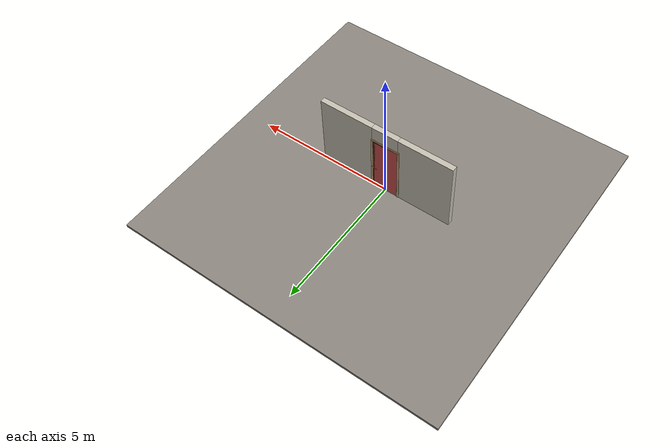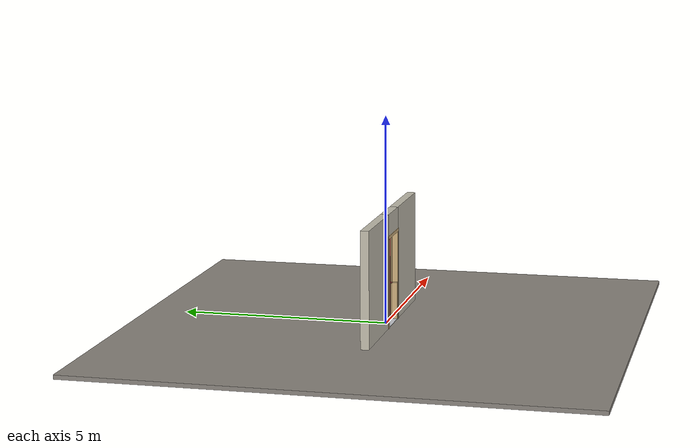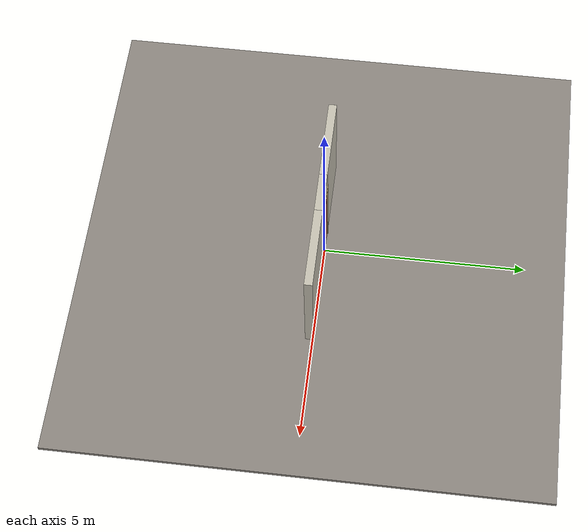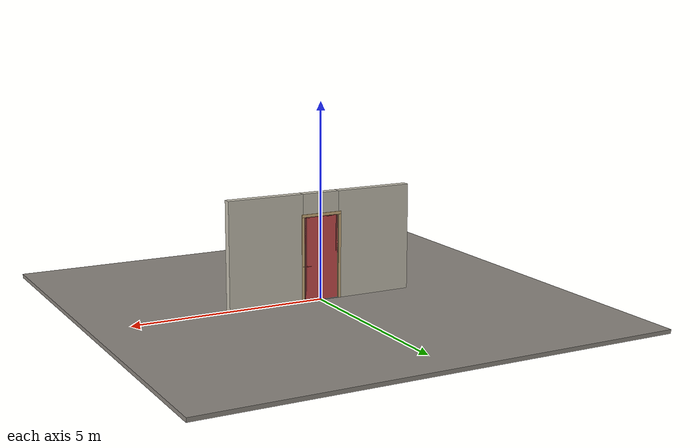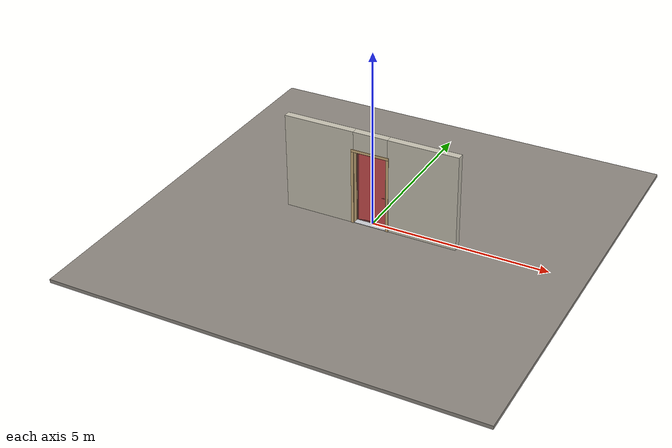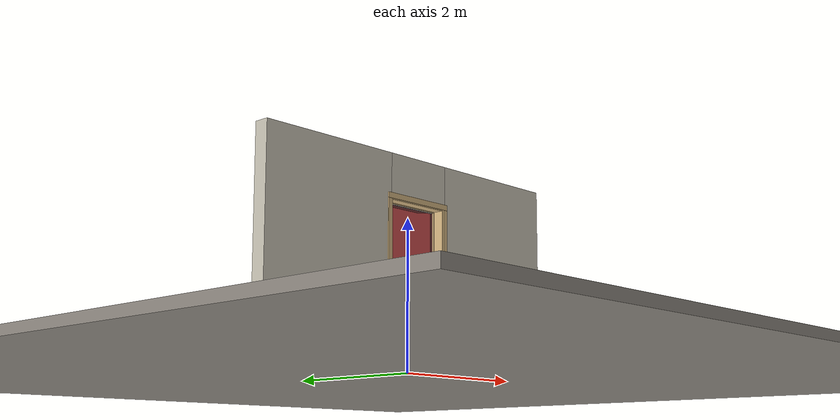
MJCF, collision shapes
<?xml version="1.0" ?>
<mujoco model="db0886_swing_single_full">
  <compiler angle="radian" meshdir="../../hardware" texturedir="../../textures" autolimits="true" inertiafromgeom="false"/>
  <option timestep="0.002" integrator="implicitfast" cone="elliptic" impratio="10" noslip_iterations="3">
    <flag multiccd="enable"/>
  </option>
  <size memory="16M"/>
  <default>
    <geom condim="4" solref="0.005 1" solimp="0.95 0.99 0.001"/>
    <joint solreflimit="0.005 1" solimplimit="0.95 0.99 0.001"/>
    <tendon solreflimit="0.005 1"/>
    <equality solref="0.002 1"/>
  </default>
  <visual>
    <headlight ambient="0.4 0.4 0.4" diffuse="0.7 0.7 0.7" specular="0.2 0.2 0.2"/>
    <quality shadowsize="4096"/>
    <map znear="0.01" zfar="60"/>
  </visual>
  <asset>
    <mesh name="hinge_11b97d6068" file="hinge_11b97d6068.obj"/>
    <mesh name="hinge_jamb_29995db8a9" file="hinge_jamb_29995db8a9.obj"/>
    <mesh name="lever_748f08efca" file="lever_748f08efca.obj"/>
    <material name="mat_floor" rgba="0.55 0.53 0.5 1" specular="0.2" shininess="0.15" reflectance="0"/>
    <material name="mat_wall" rgba="0.78 0.76 0.7 1" specular="0.2" shininess="0.1" reflectance="0"/>
    <material name="mat_leaf" rgba="0.2 0.2 0.2 0.5" specular="0.2" shininess="0.2" reflectance="0.1"/>
    <material name="mat_mesh_infill" rgba="0.6 0.62 0.64 0.55" specular="0.68" shininess="0.3" reflectance="0.1"/>
    <material name="mat_hinge" rgba="0.65 0.66 0.68 1" specular="0.74" shininess="0.5" reflectance="0.36"/>
    <material name="mat_op_chrome" rgba="0.9 0.9 0.92 1" specular="0.8" shininess="0.9" reflectance="0.4"/>
    <material name="mat_trim" rgba="0.85 0.66 0.3 1" specular="0.8" shininess="0.75" reflectance="0.4"/>
    <material name="mat_bolt" rgba="0.85 0.66 0.3 1" specular="0.8" shininess="0.75" reflectance="0.4"/>
    <material name="mat_frame" rgba="0.82 0.7 0.5 1" specular="0.2" shininess="0.45" reflectance="0"/>
    <material name="mat_seal" rgba="0.1 0.1 0.1 1" specular="0.2" shininess="0.1" reflectance="0"/>
    <material name="mat_threshold" rgba="0.8 0.81 0.83 1" specular="0.8" shininess="0.6" reflectance="0.4"/>
    <texture name="skybox" type="skybox" builtin="gradient" rgb1="0.6 0.7 0.85" rgb2="0.9 0.92 0.95" width="256" height="256"/>
  </asset>
  <worldbody>
    <light name="sun" pos="1.5 -2.5 4" dir="-0.3 0.5 -0.8" directional="true" diffuse="0.8 0.8 0.8" specular="0.3 0.3 0.3" castshadow="true"/>
    <light name="fill" pos="-1.5 2.5 3" dir="0.3 -0.5 -0.7" directional="true" diffuse="0.35 0.35 0.4" castshadow="false"/>
    <camera name="robot_view" pos="0 -2.718312 1.812087" xyaxes="1 0 0 0 0.26963 0.962964" fovy="52"/>
    <camera name="far_view" pos="0 2.557313 1.812087" xyaxes="-1 0 0 0 -0.26963 0.962964" fovy="52"/>
    <camera name="iso" pos="2.004737 -2.296262 2.234138" xyaxes="0.741536 0.670913 0 -0.242917 0.268487 0.932151" fovy="46"/>
    <camera name="detail_handle" pos="0.5019 -0.8675 1.194" xyaxes="0.97561 0.219512 0 -0.070934 0.315262 0.94635" fovy="38"/>
    <geom name="floor" type="box" size="6 6 0.05" pos="0 0 -0.05" material="mat_floor" group="0" contype="1" conaffinity="1" friction="0.8 0.005 0.0001" density="2400"/>
    <geom name="wall_left" type="box" size="1.01025 0.1 1.3735" pos="-1.48975 -0.0805 1.3735" material="mat_wall" group="0" contype="1" conaffinity="1" friction="0.6 0.005 0.0001" density="800"/>
    <geom name="wall_right" type="box" size="0.99525 0.1 1.3735" pos="1.50475 -0.0805 1.3735" material="mat_wall" group="0" contype="1" conaffinity="1" friction="0.6 0.005 0.0001" density="800"/>
    <geom name="wall_header" type="box" size="0.4945 0.1 0.2755" pos="0.015 -0.0805 2.4715" material="mat_wall" group="0" contype="1" conaffinity="1" friction="0.6 0.005 0.0001" density="800"/>
    <geom name="hinge_0_jamb" type="mesh" mesh="hinge_jamb_29995db8a9" pos="-0.4575 0.0195 0.267" quat="0 1 0 0" material="mat_hinge" group="1" contype="0" conaffinity="0" density="7850"/>
    <geom name="hinge_1_jamb" type="mesh" mesh="hinge_jamb_29995db8a9" pos="-0.4575 0.0195 1.08" quat="0 1 0 0" material="mat_hinge" group="1" contype="0" conaffinity="0" density="7850"/>
    <geom name="hinge_2_jamb" type="mesh" mesh="hinge_jamb_29995db8a9" pos="-0.4575 0.0195 1.963" quat="0 1 0 0" material="mat_hinge" group="1" contype="0" conaffinity="0" density="7850"/>
    <geom name="jamb_hinge" type="box" size="0.0095 0.1 1.0735" pos="-0.47 -0.0805 1.0735" material="mat_frame" group="0" contype="1" conaffinity="1" friction="0.6 0.005 0.0001" density="400"/>
    <geom name="strike_914_wall_n" type="box" size="0.0245 0.0875 0.0115" pos="0.485 -0.093 0.914" material="mat_frame" group="0" contype="1" conaffinity="1" friction="0.6 0.005 0.0001" density="400"/>
    <geom name="strike_914_wall_p" type="box" size="0.0245 0.008 0.0115" pos="0.485 0.0135 0.914" material="mat_frame" group="0" contype="1" conaffinity="1" friction="0.6 0.005 0.0001" density="400"/>
    <geom name="strike_914_ramp" type="box" size="0.0245 0.015977 0.0115" pos="0.489002 0.028066 0.914" quat="0.984601 0 0 -0.174819" material="mat_frame" group="0" contype="1" conaffinity="1" friction="0.12 0.005 0.0001" density="400"/>
    <geom name="strike_914_back" type="box" size="0.0175 0.0055 0.0115" pos="0.492 0 0.914" material="mat_frame" group="0" contype="1" conaffinity="1" friction="0.6 0.005 0.0001" density="400"/>
    <geom name="jamb_strike_0" type="box" size="0.0245 0.1 0.45125" pos="0.485 -0.0805 0.45125" material="mat_frame" group="0" contype="1" conaffinity="1" friction="0.6 0.005 0.0001" density="400"/>
    <geom name="jamb_strike_1" type="box" size="0.0245 0.1 0.61075" pos="0.485 -0.0805 1.53625" material="mat_frame" group="0" contype="1" conaffinity="1" friction="0.6 0.005 0.0001" density="400"/>
    <geom name="jamb_head" type="box" size="0.4945 0.1 0.0095" pos="0.015 -0.0805 2.1565" material="mat_frame" group="0" contype="1" conaffinity="1" friction="0.6 0.005 0.0001" density="400"/>
    <geom name="head_stud" type="box" size="0.4945 0.1 0.015" pos="0.015 -0.0805 2.181" material="mat_wall" group="0" contype="1" conaffinity="1" friction="0.6 0.005 0.0001" density="500"/>
    <geom name="stop_hinge" type="box" size="0.0055 0.016 1.0735" pos="-0.455 -0.029 1.0735" material="mat_frame" group="0" contype="1" conaffinity="1" friction="0.6 0.005 0.0001" density="400"/>
    <geom name="stop_strike" type="box" size="0.0055 0.016 1.0735" pos="0.455 -0.029 1.0735" material="mat_frame" group="0" contype="1" conaffinity="1" friction="0.6 0.005 0.0001" density="400"/>
    <geom name="stop_head" type="box" size="0.4605 0.016 0.0055" pos="0 -0.029 2.1415" material="mat_frame" group="0" contype="1" conaffinity="1" friction="0.6 0.005 0.0001" density="400"/>
    <geom name="seal_hinge" type="box" size="0.004 0.003 1.0735" pos="-0.4575 -0.0155 1.0735" material="mat_seal" group="1" contype="0" conaffinity="0" density="1100"/>
    <geom name="seal_strike" type="box" size="0.004 0.003 1.0735" pos="0.4575 -0.0155 1.0735" material="mat_seal" group="1" contype="0" conaffinity="0" density="1100"/>
    <geom name="seal_head" type="box" size="0.4405 0.003 0.008" pos="0 -0.0155 2.135" material="mat_seal" group="1" contype="0" conaffinity="0" density="1100"/>
    <geom name="casing_l_n" type="box" size="0.035 0.008 1.083" pos="-0.5095 -0.1885 1.0735" material="mat_frame" group="2" contype="0" conaffinity="0" density="400"/>
    <geom name="casing_r_n" type="box" size="0.035 0.008 1.083" pos="0.5095 -0.1885 1.0735" material="mat_frame" group="2" contype="0" conaffinity="0" density="400"/>
    <geom name="casing_h_n" type="box" size="0.5445 0.008 0.035" pos="0 -0.1885 2.196" material="mat_frame" group="2" contype="0" conaffinity="0" density="400"/>
    <geom name="casing_l_p" type="box" size="0.035 0.008 1.083" pos="-0.5095 0.0275 1.0735" material="mat_frame" group="2" contype="0" conaffinity="0" density="400"/>
    <geom name="casing_r_p" type="box" size="0.035 0.008 1.083" pos="0.5095 0.0275 1.0735" material="mat_frame" group="2" contype="0" conaffinity="0" density="400"/>
    <geom name="casing_h_p" type="box" size="0.5445 0.008 0.035" pos="0 0.0275 2.196" material="mat_frame" group="2" contype="0" conaffinity="0" density="400"/>
    <geom name="threshold" type="box" size="0.4795 0.1 0.0065" pos="0 -0.0805 0.0065" material="mat_threshold" group="0" contype="1" conaffinity="1" friction="0.5 0.005 0.0001" density="2700"/>
    <site name="approach_point" pos="0 -1.5 0" quat="1 0 0 0" size="0.05" rgba="0.2 0.9 0.2 0.5" group="4"/>
    <site name="goal_point" pos="0 1.5 0" quat="1 0 0 0" size="0.05" rgba="0.2 0.9 0.2 0.5" group="4"/>
    <site name="door_plane_center" pos="0 0 1.0735" quat="1 0 0 0" size="0.02" rgba="0.2 0.9 0.2 0.5" group="4"/>
    <body name="leaf" pos="-0.4605 0 0">
      <inertial pos="0.458389 0.000052 1.080073" mass="132.311959" quat="0.500049 0.49988 -0.500118 0.499952" diaginertia="9.285767482 49.890942573 59.162706723"/>
      <joint name="leaf_hinge" type="hinge" axis="0 0 1" pos="0.003 0.0195 0" limited="true" range="0 1.745329" solreflimit="0.02 1" damping="2.268966" frictionloss="2.702061" stiffness="6.6" springref="-0.532224" armature="0.02"/>
      <geom name="leaf_slab_col" type="box" size="0.457 0.0125 1.063" pos="0.46 0 1.08" material="mat_leaf" group="3" contype="1" conaffinity="1" rgba="0.8 0.3 0.3 0.25" friction="0.35 0.005 0.0001" density="1"/>
      <geom name="leaf_rail_b" type="box" size="0.457 0.0125 0.0225" pos="0.46 0 0.0395" material="mat_leaf" group="1" contype="0" conaffinity="0" density="1"/>
      <geom name="leaf_rail_t" type="box" size="0.457 0.0125 0.0225" pos="0.46 0 2.1205" material="mat_leaf" group="1" contype="0" conaffinity="0" density="1"/>
      <geom name="leaf_stile_h" type="box" size="0.0225 0.0125 1.063" pos="0.0255 0 1.08" material="mat_leaf" group="1" contype="0" conaffinity="0" density="1"/>
      <geom name="leaf_stile_l" type="box" size="0.0225 0.0125 1.063" pos="0.8945 0 1.08" material="mat_leaf" group="1" contype="0" conaffinity="0" density="1"/>
      <geom name="leaf_mesh" type="box" size="0.412 0.0015 1.018" pos="0.46 0 1.08" material="mat_mesh_infill" group="1" contype="0" conaffinity="0" density="1"/>
      <geom name="hinge_0" type="mesh" mesh="hinge_11b97d6068" pos="0.003 0.0195 0.267" quat="0 1 0 0" material="mat_hinge" group="1" contype="0" conaffinity="0" density="7850"/>
      <geom name="hinge_1" type="mesh" mesh="hinge_11b97d6068" pos="0.003 0.0195 1.08" quat="0 1 0 0" material="mat_hinge" group="1" contype="0" conaffinity="0" density="7850"/>
      <geom name="hinge_2" type="mesh" mesh="hinge_11b97d6068" pos="0.003 0.0195 1.963" quat="0 1 0 0" material="mat_hinge" group="1" contype="0" conaffinity="0" density="7850"/>
      <geom name="leaf_latch_bolt_faceplate" type="box" size="0.0006 0.01 0.0215" pos="0.9164 0 0.914" material="mat_bolt" group="1" contype="0" conaffinity="0" density="8500"/>
      <site name="leaf_edge_mid" pos="0.917 0 1.063" quat="1 0 0 0" size="0.02" rgba="0.2 0.9 0.2 0.5" group="4"/>
      <body name="leaf_handle" pos="0.872 0 0.914">
        <inertial pos="-0.024678 0 0" mass="0.830929" quat="0.707107 0 0 -0.707107" diaginertia="0.001176958 0.002403496 0.003443927"/>
        <joint name="leaf_handle_hinge" type="hinge" axis="0 -1 0" limited="true" range="0 0.87" damping="0.205082" frictionloss="0.04" stiffness="0.9" springref="-0.444444" armature="0.01"/>
        <geom name="leaf_handle_spindle" type="cylinder" size="0.006 0.0205" pos="0 0 0" quat="0.707107 -0.707107 0 0" material="mat_op_chrome" group="1" contype="0" conaffinity="0" density="7850"/>
        <geom name="leaf_handle_lever_n" type="mesh" mesh="lever_748f08efca" pos="0 -0.0125 0" quat="0.707107 0.707107 0 0" material="mat_op_chrome" group="1" contype="0" conaffinity="0" density="3000"/>
        <geom name="leaf_handle_lever_col_n" type="capsule" size="0.008 0.048" pos="-0.056 -0.0675 0" quat="0.707107 0 -0.707107 0" material="mat_op_chrome" group="3" contype="1" conaffinity="1" rgba="0.8 0.3 0.3 0.25" friction="0.7 0.01 0.0001" density="3000"/>
        <geom name="leaf_handle_hub_col_n" type="cylinder" size="0.012 0.022" pos="0 -0.0425 0" quat="0.707107 -0.707107 0 0" material="mat_op_chrome" group="3" contype="1" conaffinity="1" rgba="0.8 0.3 0.3 0.25" friction="0.6 0.005 0.0001" density="3000"/>
        <geom name="leaf_handle_lever_p" type="mesh" mesh="lever_748f08efca" pos="0 0.0125 0" quat="-0.707107 0.707107 0 0" material="mat_op_chrome" group="1" contype="0" conaffinity="0" density="3000"/>
        <geom name="leaf_handle_lever_col_p" type="capsule" size="0.008 0.048" pos="-0.056 0.0675 0" quat="0.707107 0 -0.707107 0" material="mat_op_chrome" group="3" contype="1" conaffinity="1" rgba="0.8 0.3 0.3 0.25" friction="0.7 0.01 0.0001" density="3000"/>
        <geom name="leaf_handle_hub_col_p" type="cylinder" size="0.012 0.022" pos="0 0.0425 0" quat="0.707107 -0.707107 0 0" material="mat_op_chrome" group="3" contype="1" conaffinity="1" rgba="0.8 0.3 0.3 0.25" friction="0.6 0.005 0.0001" density="3000"/>
        <site name="leaf_handle_grip_n" pos="-0.0896 -0.0675 0" quat="1 0 0 0" size="0.012" rgba="0.2 0.9 0.2 0.5" group="4"/>
        <site name="leaf_handle_grip_p" pos="-0.0896 0.0675 0" quat="1 0 0 0" size="0.012" rgba="0.2 0.9 0.2 0.5" group="4"/>
      </body>
      <body name="leaf_latch_bolt" pos="0.917 0 0.914">
        <inertial pos="-0.008 0 0" mass="0.014242" quat="0 0 0.707107 0.707107" diaginertia="0.00000011 0.000001386 0.000001386"/>
        <joint name="leaf_latch_bolt_slide" type="slide" axis="-1 0 0" limited="true" range="0 0.01" damping="2" frictionloss="0.3" stiffness="300" springref="-0.006667" armature="0.1"/>
        <geom name="leaf_latch_bolt_capsule" type="capsule" size="0.004 0.014" pos="-0.008 0 0" quat="0.707107 0 0.707107 0" material="mat_bolt" group="0" contype="1" conaffinity="1" friction="0.2 0.005 0.0001" density="8500"/>
      </body>
    </body>
  </worldbody>
  <tendon>
    <fixed name="leaf_latch_bolt_coupling" limited="true" range="0 10">
      <joint joint="leaf_latch_bolt_slide" coef="1"/>
      <joint joint="leaf_handle_hinge" coef="-0.012658"/>
    </fixed>
  </tendon>
  <sensor>
    <jointpos name="leaf_hinge_pos" joint="leaf_hinge"/>
    <jointvel name="leaf_hinge_vel" joint="leaf_hinge"/>
    <jointpos name="leaf_handle_hinge_pos" joint="leaf_handle_hinge"/>
    <jointvel name="leaf_handle_hinge_vel" joint="leaf_handle_hinge"/>
    <jointpos name="leaf_latch_bolt_slide_pos" joint="leaf_latch_bolt_slide"/>
    <jointvel name="leaf_latch_bolt_slide_vel" joint="leaf_latch_bolt_slide"/>
  </sensor>
</mujoco>
